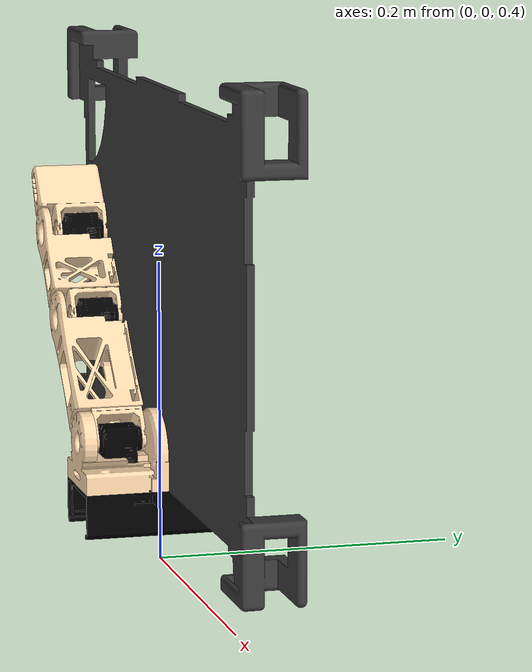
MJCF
<mujoco model="final_assembly_vertical">
  <compiler angle="radian" coordinate="local" inertiafromgeom="false"/>
  <option gravity="0 0 -9.81" timestep="0.001"/>

  <asset>
    <mesh name="base_plate" file="meshes/base_plate.STL"/>
    <mesh name="base_link" file="meshes/base_link.STL"/>
    <mesh name="support_link" file="meshes/support_link.STL"/>
    <mesh name="motor_link1" file="meshes/motor_link1.STL"/>
    <mesh name="robot_link1" file="meshes/robot_link1.STL"/>
    <mesh name="motor_link2" file="meshes/motor_link2.STL"/>
    <mesh name="robot_link2" file="meshes/robot_link2.STL"/>
    <mesh name="motor_link3" file="meshes/motor_link3.STL"/>
    <mesh name="gripper_link" file="meshes/gripper_link.STL"/>
  </asset>

  <worldbody>

    <!-- Base plate rotated 90 degrees around X-axis to make arm vertical -->
    <!-- Robot now operates in XZ plane (vertical) instead of XY plane (horizontal) -->
    <body name="base_plate" pos="0 0 0.58" euler="1.5708 0 0">
      <inertial pos="-0.00088378 0.00030395 -0.00458333"
                mass="0.72824599"
                diaginertia="0.0034114 0.0100764 0.0134369"/>
      <geom type="mesh" mesh="base_plate" rgba="0.227 0.227 0.227 1"/>

      <body name="base_link" pos="-0.0045632 -0.12171 -0.0345">
        <inertial pos="0.00003034 -0.0020867 0.0262475"
                  mass="0.053343"
                  diaginertia="6.399e-05 6.607e-05 5.072e-05"/>
        <geom type="mesh" mesh="base_link" rgba="0 0 0 1"/>

        <body name="support_link" pos="0 -0.006723 0.062363">
          <inertial pos="-0.0000011 0.015349 -0.0016818"
                    mass="0.068642"
                    diaginertia="3.606e-05 4.376e-05 3.025e-05"/>
          <geom type="mesh" mesh="support_link" rgba="1 0.855 0.682 1"/>

          <body name="motor_link1" pos="0.0002 0.0055 -0.00016285">
            <inertial pos="0.0000045 0.017558 -0.000282"
                      mass="0.0158647"
                      diaginertia="1.592e-06 6.541e-07 1.854e-06"/>
            <geom type="mesh" mesh="motor_link1" rgba="0 0 0 1"/>

            <body name="robot_link1" pos="0 0.0245 0.0168">
              <joint name="robot_joint1"
                     type="hinge"
                     axis="0 0 1"
                     ref="2.35"
                     range="-3.1416 3.1416"
                     damping="0.05"
                     frictionloss="0.1"/>
              <inertial pos="-0.0373 0.0378 -0.01286"
                        mass="0.0472535"
                        diaginertia="3.257e-05 3.211e-05 4.299e-05"/>
              <geom type="mesh" mesh="robot_link1" rgba="1 0.855 0.682 1"/>

              <body name="motor_link2" pos="-0.053187 0.053592 -0.0169">
                <inertial pos="-0.01233 0.0125 -0.000282"
                          mass="0.0158647"
                          diaginertia="1.127e-06 1.118e-06 1.854e-06"/>
                <geom type="mesh" mesh="motor_link2" rgba="0 0 0 1"/>

                <body name="robot_link2" pos="-0.017212 0.017435 0.0168">
                  <joint name="robot_joint2"
                         type="hinge"
                         axis="0 0 1"
                         ref="-0.03"
                         range="-1.5708 1.5708"
                         damping="0.05"
                         frictionloss="0.1"/>
                  <inertial pos="-0.02486 0.02856 -0.01054"
                            mass="0.025259"
                            diaginertia="1.223e-05 1.109e-05 1.134e-05"/>
                  <geom type="mesh" mesh="robot_link2" rgba="1 0.855 0.682 1"/>

                  <body name="motor_link3" pos="-0.029725 0.03384 -0.0169">
                    <inertial pos="-0.01153 0.01325 -0.000282"
                              mass="0.0158647"
                              diaginertia="1.186e-06 1.059e-06 1.854e-06"/>
                    <geom type="mesh" mesh="motor_link3" rgba="0 0 0 1"/>

                    <body name="gripper_link" pos="-0.016087 0.018479 0.0168">
                      <joint name="gripper_joint"
                             type="hinge"
                             axis="0 0 1"
                             ref="-0.08"
                             range="-1.5708 1.5708"
                             damping="0.05"
                             frictionloss="0.1"/>
                      <inertial pos="-0.01533 0.02187 -0.01321"
                                mass="0.0186884"
                                diaginertia="5.395e-06 4.587e-06 3.542e-06"/>
                      <geom type="mesh" mesh="gripper_link" rgba="1 0.855 0.682 1"/>
                      <!-- END-EFFECTOR SITE (at gripper tip) -->
                      <site name="ee_site"
                            pos="-0.025 0.035 0"
                            size="0.005"
                            rgba="1 0 0 1"/>
                    </body>

                  </body>
                </body>
              </body>
            </body>

          </body>
        </body>
      </body>
    </body>
  </worldbody>

  <!-- ACTUATORS - Torque control with limits for stability -->
  <actuator>
    <motor name="motor1" joint="robot_joint1" gear="1" ctrlrange="-5.0 5.0"/>
    <motor name="motor2" joint="robot_joint2" gear="1" ctrlrange="-5.0 5.0"/>
    <motor name="motor3" joint="gripper_joint" gear="1" ctrlrange="-2.0 2.0"/>
  </actuator>

</mujoco>
